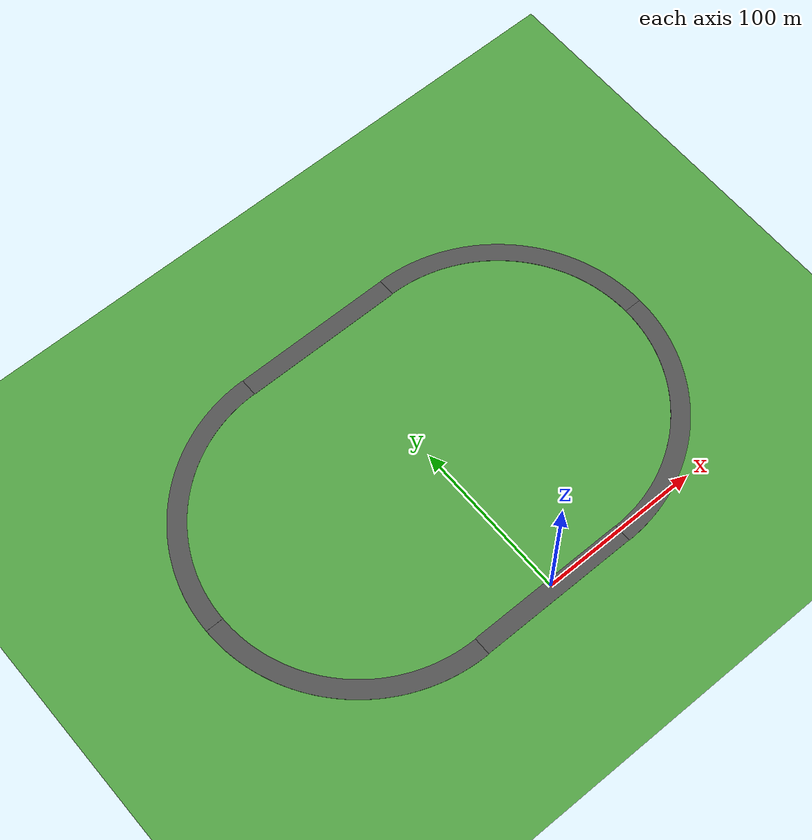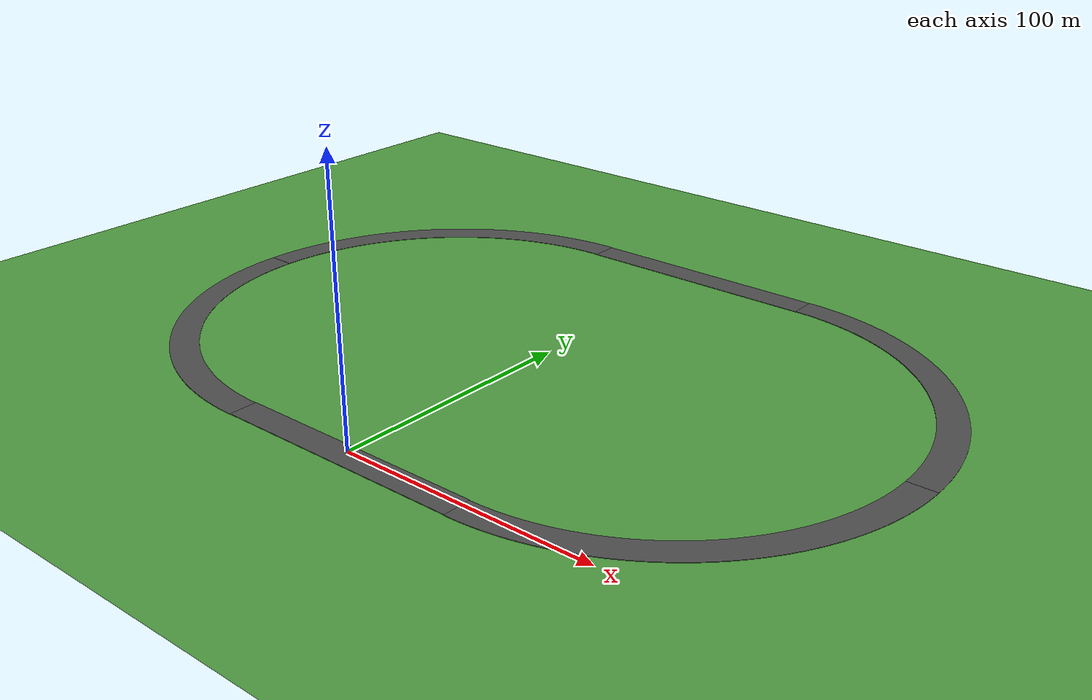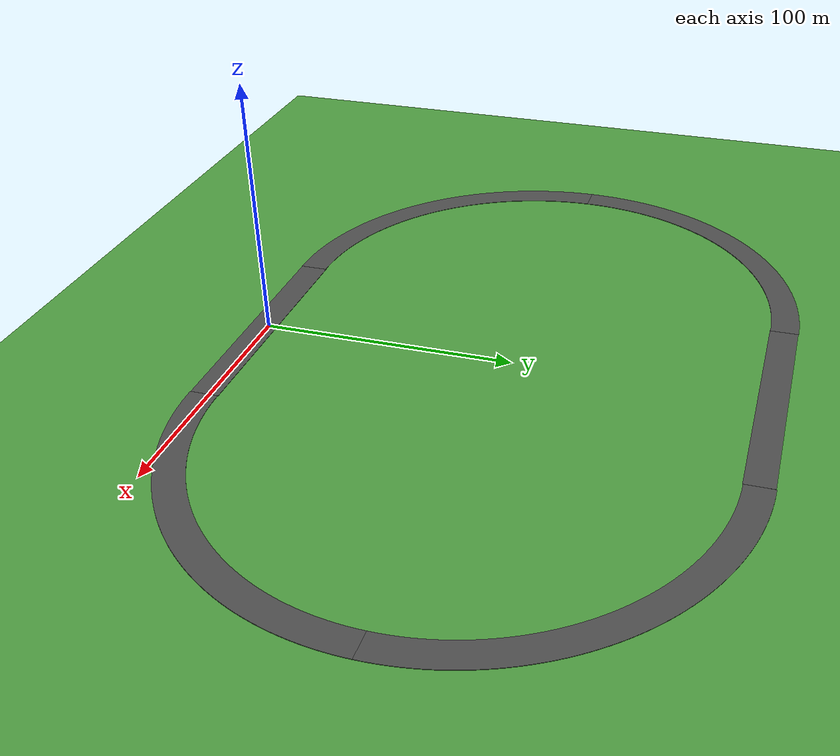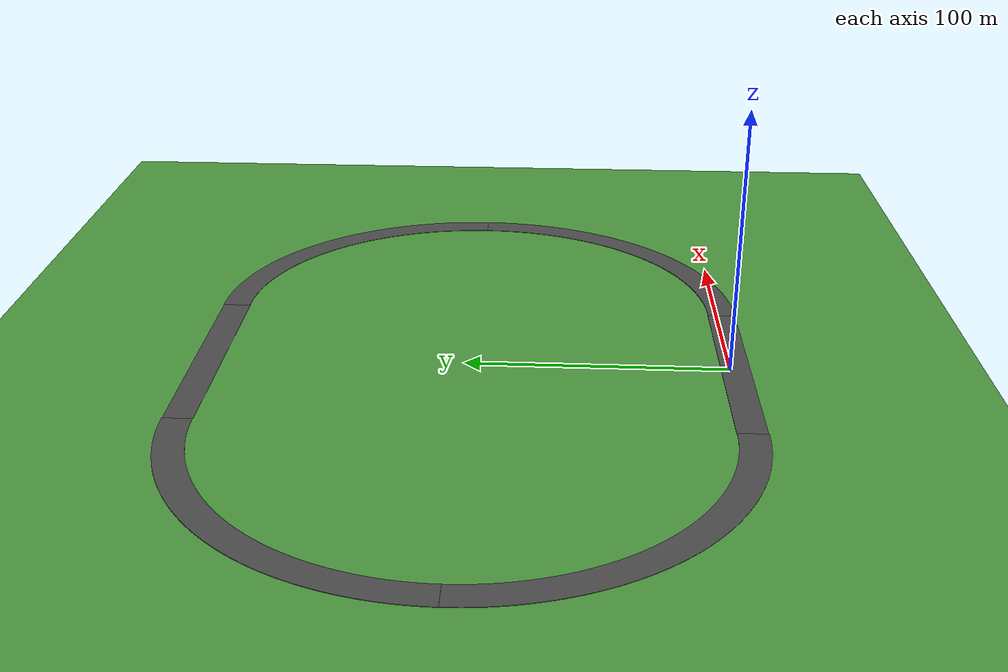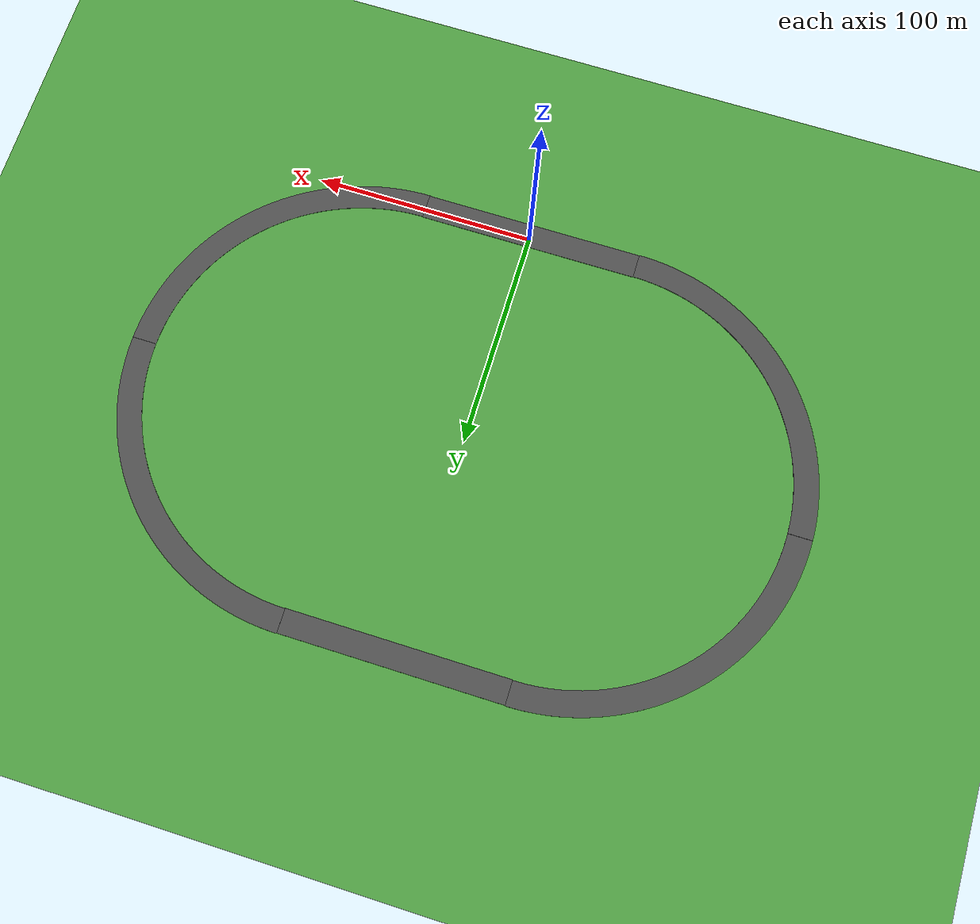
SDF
<sdf version='1.6'>
  <world name='default'>
    <light name='sun' type='directional'>
      <cast_shadows>1</cast_shadows>
      <pose frame=''>0 0 10 0 -0 0</pose>
      <diffuse>0.8 0.8 0.8 1</diffuse>
      <specular>0.2 0.2 0.2 1</specular>
      <attenuation>
        <range>1000</range>
        <constant>0.9</constant>
        <linear>0.01</linear>
        <quadratic>0.001</quadratic>
      </attenuation>
      <direction>-0.5 0.1 -0.9</direction>
      <spot>
        <inner_angle>0</inner_angle>
        <outer_angle>0</outer_angle>
        <falloff>0</falloff>
      </spot>
    </light>
    <gravity>0 0 -9.8</gravity>
    <magnetic_field>6e-06 2.3e-05 -4.2e-05</magnetic_field>
    <atmosphere type='adiabatic'/>
    <physics name='default_physics' default='0' type='ode'>
      <max_step_size>0.001</max_step_size>
      <real_time_update_rate>1000</real_time_update_rate>
    </physics>
    <scene>
      <ambient>0.4 0.4 0.4 1</ambient>
      <background>0.7 0.7 0.7 1</background>
      <shadows>1</shadows>
    </scene>
    <wind/>
    <spherical_coordinates>
      <surface_model>EARTH_WGS84</surface_model>
      <latitude_deg>0</latitude_deg>
      <longitude_deg>0</longitude_deg>
      <elevation>0</elevation>
      <heading_deg>0</heading_deg>
    </spherical_coordinates>
    <gui fullscreen='0'>
      <camera name='user_camera'>
        <pose frame=''>-40.8098 3.59455 27.5717 0 0.559643 0.360195</pose>
        <view_controller>orbit</view_controller>
        <projection_type>perspective</projection_type>
      </camera>
    </gui>
    <model name='(DS) Straight Road - 100m'>
      <static>1</static>
      <link name='link'>
        <inertial>
          <pose frame=''>0 0 0 0 -0 0</pose>
          <mass>1</mass>
          <inertia>
            <ixx>1</ixx>
            <iyy>1</iyy>
            <izz>1</izz>
            <ixy>0</ixy>
            <ixz>0</ixz>
            <iyz>0</iyz>
          </inertia>
        </inertial>
        <collision name='collision'>
          <geometry>
            <mesh>
              <uri>model://ds_straight_road_100m/meshes/straight_road_100m.dae</uri>
            </mesh>
          </geometry>
          <max_contacts>10</max_contacts>
          <surface>
            <contact>
              <ode/>
            </contact>
            <bounce/>
            <friction>
              <torsional>
                <ode/>
              </torsional>
              <ode/>
            </friction>
          </surface>
        </collision>
        <visual name='visual'>
          <geometry>
            <mesh>
              <uri>model://ds_straight_road_100m/meshes/straight_road_100m.dae</uri>
            </mesh>
          </geometry>
          <material>
            <script>
              <uri>file://media/materials/scripts/ds_sim.material</uri>
              <name>DSSim/Road</name>
            </script>
          </material>
        </visual>
        <self_collide>0</self_collide>
        <enable_wind>0</enable_wind>
        <kinematic>0</kinematic>
      </link>
      <pose frame=''>0 8 0 0 -0 0</pose>
    </model>
    <model name='(DS) Straight Road - 100m_0'>
      <static>1</static>
      <link name='link'>
        <inertial>
          <pose frame=''>0 0 0 0 -0 0</pose>
          <mass>1</mass>
          <inertia>
            <ixx>1</ixx>
            <iyy>1</iyy>
            <izz>1</izz>
            <ixy>0</ixy>
            <ixz>0</ixz>
            <iyz>0</iyz>
          </inertia>
        </inertial>
        <collision name='collision'>
          <geometry>
            <mesh>
              <uri>model://ds_straight_road_100m/meshes/straight_road_100m.dae</uri>
            </mesh>
          </geometry>
          <max_contacts>10</max_contacts>
          <surface>
            <contact>
              <ode/>
            </contact>
            <bounce/>
            <friction>
              <torsional>
                <ode/>
              </torsional>
              <ode/>
            </friction>
          </surface>
        </collision>
        <visual name='visual'>
          <geometry>
            <mesh>
              <uri>model://ds_straight_road_100m/meshes/straight_road_100m.dae</uri>
            </mesh>
          </geometry>
          <material>
            <script>
              <uri>file://media/materials/scripts/ds_sim.material</uri>
              <name>DSSim/Road</name>
            </script>
          </material>
        </visual>
        <self_collide>0</self_collide>
        <enable_wind>0</enable_wind>
        <kinematic>0</kinematic>
      </link>
      <pose frame=''>0 187.55 0 0 -0 3.1415</pose>
    </model>
    <model name='(DS) Curved Road - 100m'>
      <static>1</static>
      <link name='link'>
        <inertial>
          <pose frame=''>0 0 0 0 -0 0</pose>
          <mass>1</mass>
          <inertia>
            <ixx>1</ixx>
            <iyy>1</iyy>
            <izz>1</izz>
            <ixy>0</ixy>
            <ixz>0</ixz>
            <iyz>0</iyz>
          </inertia>
        </inertial>
        <collision name='collision'>
          <geometry>
            <mesh>
              <uri>model://ds_curved_road_100m/meshes/curved_road_100m.dae</uri>
            </mesh>
          </geometry>
          <max_contacts>10</max_contacts>
          <surface>
            <contact>
              <ode/>
            </contact>
            <bounce/>
            <friction>
              <torsional>
                <ode/>
              </torsional>
              <ode/>
            </friction>
          </surface>
        </collision>
        <visual name='visual'>
          <geometry>
            <mesh>
              <uri>model://ds_curved_road_100m/meshes/curved_road_100m.dae</uri>
            </mesh>
          </geometry>
          <material>
            <script>
              <uri>file://media/materials/scripts/ds_sim.material</uri>
              <name>DSSim/Road</name>
            </script>
          </material>
        </visual>
        <self_collide>0</self_collide>
        <enable_wind>0</enable_wind>
        <kinematic>0</kinematic>
      </link>
      <pose frame=''>102.73 45.035 0 0 -0 0</pose>
    </model>
    <model name='(DS) Curved Road - 100m_0'>
      <static>1</static>
      <link name='link'>
        <inertial>
          <pose frame=''>0 0 0 0 -0 0</pose>
          <mass>1</mass>
          <inertia>
            <ixx>1</ixx>
            <iyy>1</iyy>
            <izz>1</izz>
            <ixy>0</ixy>
            <ixz>0</ixz>
            <iyz>0</iyz>
          </inertia>
        </inertial>
        <collision name='collision'>
          <geometry>
            <mesh>
              <uri>model://ds_curved_road_100m/meshes/curved_road_100m.dae</uri>
            </mesh>
          </geometry>
          <max_contacts>10</max_contacts>
          <surface>
            <contact>
              <ode/>
            </contact>
            <bounce/>
            <friction>
              <torsional>
                <ode/>
              </torsional>
              <ode/>
            </friction>
          </surface>
        </collision>
        <visual name='visual'>
          <geometry>
            <mesh>
              <uri>model://ds_curved_road_100m/meshes/curved_road_100m.dae</uri>
            </mesh>
          </geometry>
          <material>
            <script>
              <uri>file://media/materials/scripts/ds_sim.material</uri>
              <name>DSSim/Road</name>
            </script>
          </material>
        </visual>
        <self_collide>0</self_collide>
        <enable_wind>0</enable_wind>
        <kinematic>0</kinematic>
      </link>
      <pose frame=''>102.735 150.5 0 0 -0 1.5707</pose>
    </model>
    <model name='(DS) Curved Road - 100m_1'>
      <static>1</static>
      <link name='link'>
        <inertial>
          <pose frame=''>0 0 0 0 -0 0</pose>
          <mass>1</mass>
          <inertia>
            <ixx>1</ixx>
            <iyy>1</iyy>
            <izz>1</izz>
            <ixy>0</ixy>
            <ixz>0</ixz>
            <iyz>0</iyz>
          </inertia>
        </inertial>
        <collision name='collision'>
          <geometry>
            <mesh>
              <uri>model://ds_curved_road_100m/meshes/curved_road_100m.dae</uri>
            </mesh>
          </geometry>
          <max_contacts>10</max_contacts>
          <surface>
            <contact>
              <ode/>
            </contact>
            <bounce/>
            <friction>
              <torsional>
                <ode/>
              </torsional>
              <ode/>
            </friction>
          </surface>
        </collision>
        <visual name='visual'>
          <geometry>
            <mesh>
              <uri>model://ds_curved_road_100m/meshes/curved_road_100m.dae</uri>
            </mesh>
          </geometry>
          <material>
            <script>
              <uri>file://media/materials/scripts/ds_sim.material</uri>
              <name>DSSim/Road</name>
            </script>
          </material>
        </visual>
        <self_collide>0</self_collide>
        <enable_wind>0</enable_wind>
        <kinematic>0</kinematic>
      </link>
      <pose frame=''>-102.74 150.526 0 0 -0 3.1415</pose>
    </model>
    <model name='(DS) Curved Road - 100m_2'>
      <static>1</static>
      <link name='link'>
        <inertial>
          <pose frame=''>0 0 0 0 -0 0</pose>
          <mass>1</mass>
          <inertia>
            <ixx>1</ixx>
            <iyy>1</iyy>
            <izz>1</izz>
            <ixy>0</ixy>
            <ixz>0</ixz>
            <iyz>0</iyz>
          </inertia>
        </inertial>
        <collision name='collision'>
          <geometry>
            <mesh>
              <uri>model://ds_curved_road_100m/meshes/curved_road_100m.dae</uri>
            </mesh>
          </geometry>
          <max_contacts>10</max_contacts>
          <surface>
            <contact>
              <ode/>
            </contact>
            <bounce/>
            <friction>
              <torsional>
                <ode/>
              </torsional>
              <ode/>
            </friction>
          </surface>
        </collision>
        <visual name='visual'>
          <geometry>
            <mesh>
              <uri>model://ds_curved_road_100m/meshes/curved_road_100m.dae</uri>
            </mesh>
          </geometry>
          <material>
            <script>
              <uri>file://media/materials/scripts/ds_sim.material</uri>
              <name>DSSim/Road</name>
            </script>
          </material>
        </visual>
        <self_collide>0</self_collide>
        <enable_wind>0</enable_wind>
        <kinematic>0</kinematic>
      </link>
      <pose frame=''>-102.732 45.03 0 0 0 -1.5707</pose>
    </model>
    <audio>
      <device>default</device>
    </audio>
    <model name='grassland'>
      <static>1</static>
      <link name='link'>
        <collision name='collision'>
          <geometry>
            <plane>
              <normal>0 0 1</normal>
              <size>500 500</size>
            </plane>
          </geometry>
          <surface>
            <friction>
              <ode>
                <mu>100</mu>
                <mu2>50</mu2>
              </ode>
              <torsional>
                <ode/>
              </torsional>
            </friction>
            <contact>
              <ode/>
            </contact>
            <bounce/>
          </surface>
          <max_contacts>10</max_contacts>
        </collision>
        <visual name='visual'>
          <cast_shadows>0</cast_shadows>
          <geometry>
            <plane>
              <normal>0 0 1</normal>
              <size>500 500</size>
            </plane>
          </geometry>
          <material>
            <script>
              <uri>file://media/materials/scripts/gazebo.material</uri>
              <name>Gazebo/Grass</name>
            </script>
          </material>
        </visual>
        <self_collide>0</self_collide>
        <enable_wind>0</enable_wind>
        <kinematic>0</kinematic>
      </link>
      <pose frame=''>0 0 0 0 -0 0</pose>
    </model>
    <plugin name="path_drawer_plugin" filename="libpath_drawer_plugin.so"/>
  </world>
</sdf>
